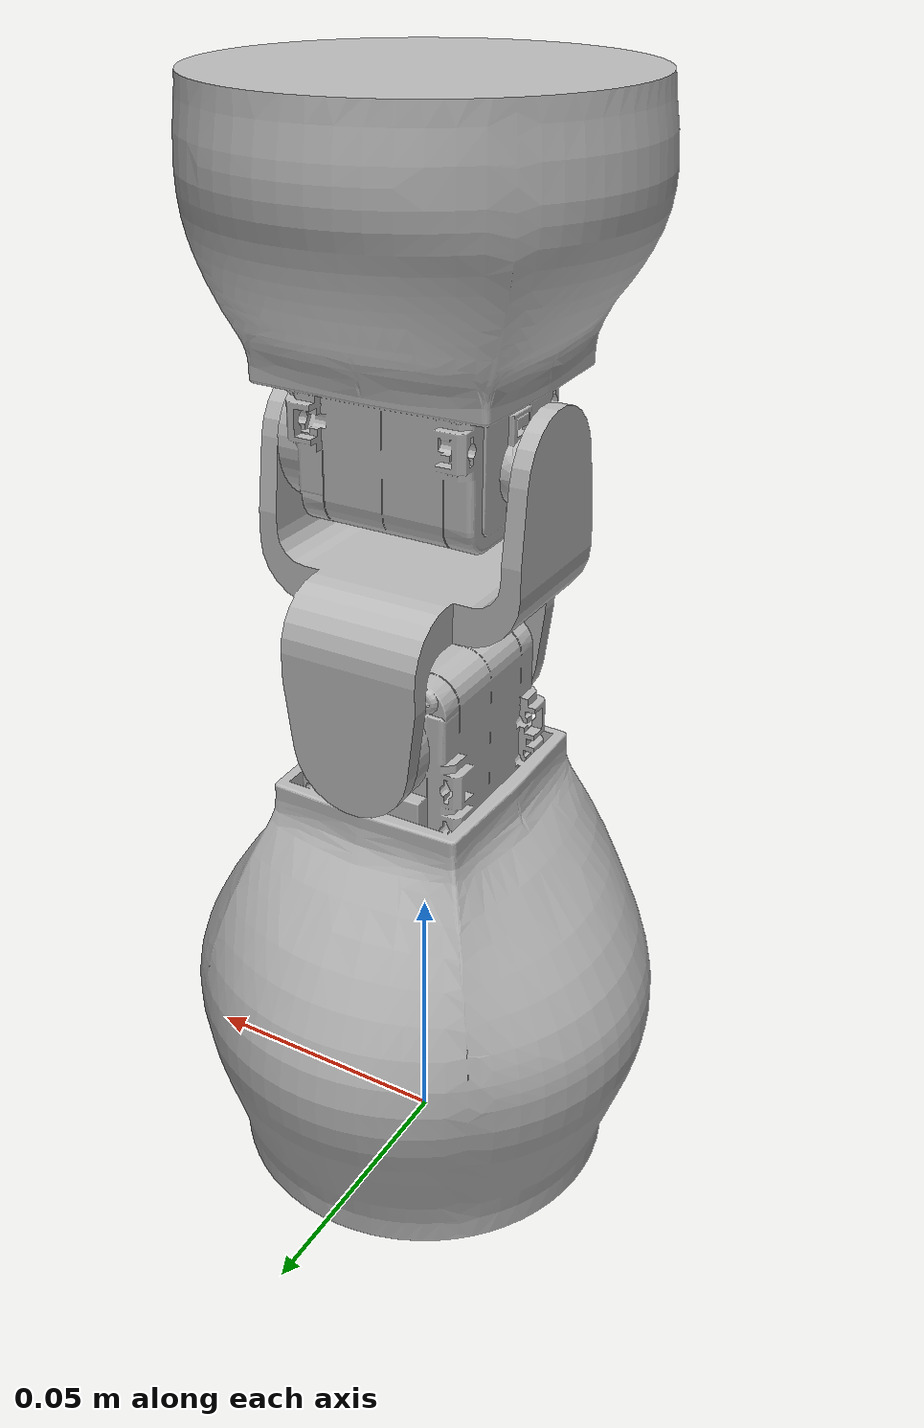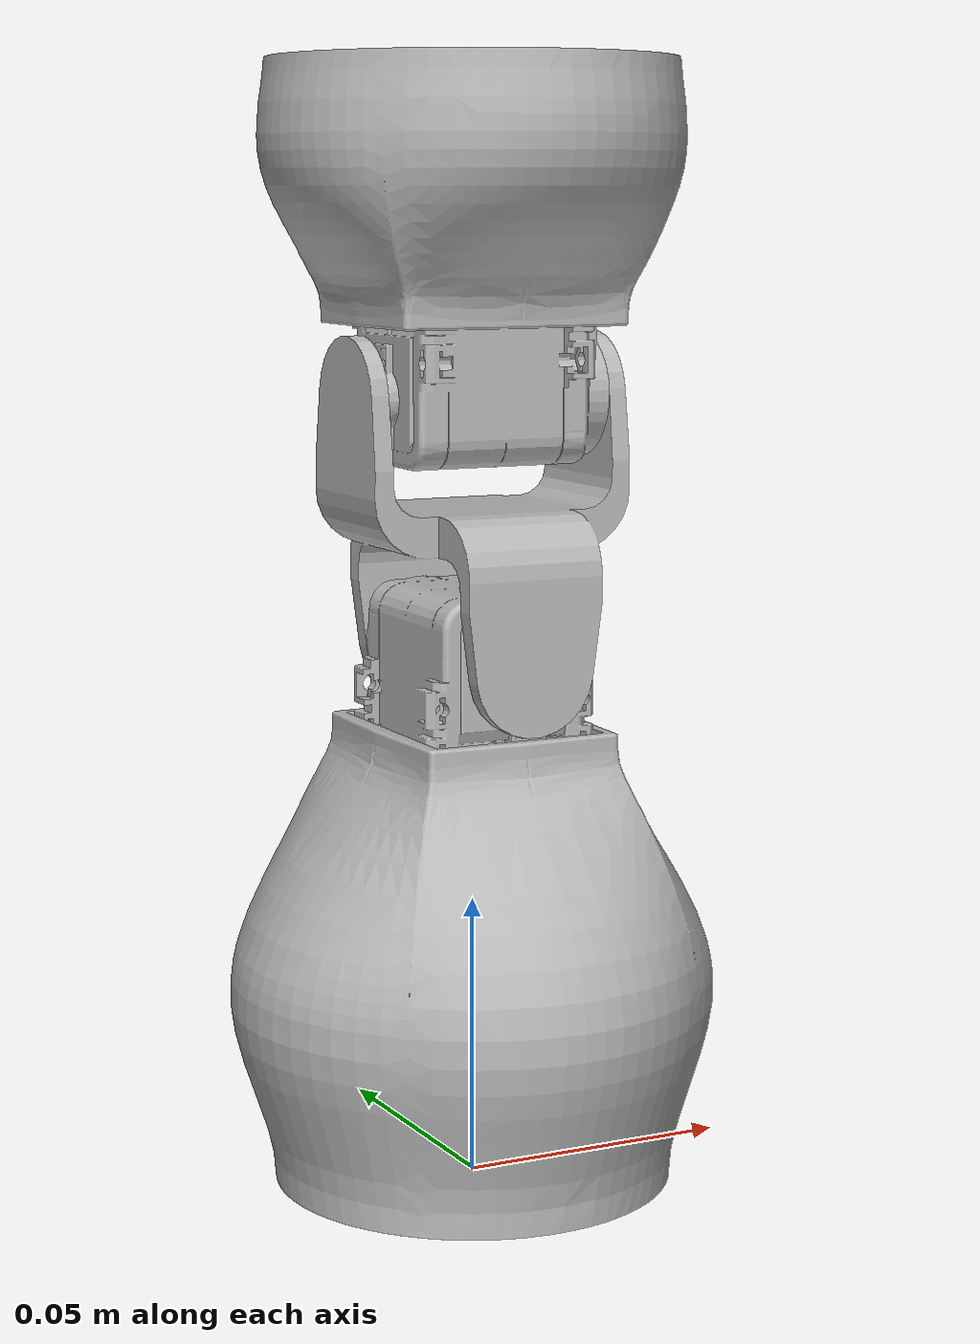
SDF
<?xml version="1.0" encoding="UTF-8"?>
<sdf version='1.6'>
  <model name='fable_robot'>
    <pose>0 0 0 0 0 0</pose>

    <link name='world'>
    </link>
    <link name='base_link'>
      <pose frame=''>0 0 0 0 -0 0</pose>
      <inertial>
        <pose frame=''>0 0 0 0 -0 0</pose>
        <mass>1000</mass>
        <inertia>
          <ixx>0.000196919</ixx>
          <ixy>0</ixy>
          <ixz>0</ixz>
          <iyy>0.000196919</iyy>
          <iyz>0</iyz>
          <izz>0.000245</izz>
        </inertia>
      </inertial>
      <collision name='base_link_collision'>
        <pose frame=''>0 0 0 0 -0 0</pose>
        <geometry>
          <mesh>
            <scale>1 1 1</scale>
            <uri>model://fable_model/meshes/base.dae</uri>
          </mesh>
        </geometry>
        <surface>
          <contact>
            <ode/>
          </contact>
          <friction>
            <ode/>
          </friction>
        </surface>
      </collision>
      <visual name='base_link_visual'>
        <pose frame=''>0 0 0 0 -0 0</pose>
        <geometry>
          <mesh>
            <scale>1 1 1</scale>
            <uri>model://fable_model/meshes/base.dae</uri>
          </mesh>
        </geometry>
        <material>
          <script>
            <uri>__default__</uri>
            <name>__default__</name>
          </script>
        </material>
      </visual>
      <gravity>1</gravity>
      <velocity_decay/>
    </link>

    <joint name='world_joint' type='fixed'>
      <child>base_link</child>
      <parent>world</parent>
      <axis>
        <xyz>-0 0 0</xyz>
        <use_parent_model_frame>1</use_parent_model_frame>
      </axis>
    </joint>

    <link name='neck'>
      <pose frame=''>0 0 0.0945 1.57079 -1.57079 3.14159</pose>
      <inertial>
        <pose frame=''>0 0 0 0 -0 0</pose>
        <mass>0.01</mass>
        <inertia>
          <ixx>6.88121e-06</ixx>
          <ixy>-7.58338e-10</ixy>
          <ixz>-7.71885e-11</ixz>
          <iyy>7.67769e-06</iyy>
          <iyz>7.59082e-10</iyz>
          <izz>6.8812e-06</izz>
        </inertia>
      </inertial>
      <collision name='neck_collision'>
        <pose frame=''>-0.0112 0 0 -1.57 -1.57 0</pose>
        <geometry>
          <mesh>
            <scale>1 1 1</scale>
            <uri>model://fable_model/meshes/middle.dae</uri>
          </mesh>
        </geometry>
        <surface>
          <contact>
            <ode/>
          </contact>
          <friction>
            <ode/>
          </friction>
        </surface>
      </collision>
      <visual name='neck_visual'>
        <pose frame=''>-0.0112 0 0 -1.57 -1.57 0</pose>
        <geometry>
          <mesh>
            <scale>1 1 1</scale>
            <uri>model://fable_model/meshes/middle.dae</uri>
          </mesh>
        </geometry>
        <material>
          <script>
            <uri>__default__</uri>
            <name>__default__</name>
          </script>
        </material>
      </visual>
      <gravity>1</gravity>
      <velocity_decay/>
    </link>
    <joint name='joint_1' type='revolute'>
      <child>neck</child>
      <parent>base_link</parent>
      <axis>
        <xyz>-0 1 -0</xyz>
        <limit>
          <lower>-1.5708</lower>
          <upper>1.5708</upper>
          <effort>1.56</effort>
          <velocity>1.56</velocity>
        </limit>
        <dynamics>
          <damping>0.15</damping>
          <friction>0.1</friction>
          <spring_reference>0</spring_reference>
          <spring_stiffness>0</spring_stiffness>
        </dynamics>
        <use_parent_model_frame>1</use_parent_model_frame>
      </axis>
    </joint>
    <link name='top'>
      <pose frame=''>0 0 0.1402 3e-06 -1.57079 3.14159</pose>
      <inertial>
        <pose frame=''>0 0 0 0 -0 0</pose>
        <mass>0.1</mass>
        <inertia>
          <ixx>0.0001525</ixx>
          <ixy>0</ixy>
          <ixz>0</ixz>
          <iyy>0.0001525</iyy>
          <iyz>0</iyz>
          <izz>0.000245</izz>
        </inertia>
      </inertial>
      <collision name='top_collision'>
        <pose frame=''>0.0566 0 0 -1.57 0 1.57</pose>
        <geometry>
          <mesh>
            <scale>1 1 1</scale>
            <uri>model://fable_model/meshes/top.dae</uri>
          </mesh>
        </geometry>
        <surface>
          <contact>
            <ode/>
          </contact>
          <friction>
            <ode/>
          </friction>
        </surface>
      </collision>
      <collision name='top_fixed_joint_lump__ee_link_collision_1'>
        <pose frame=''>0.06 0 0 3.14159 1.57079 3.14159</pose>
        <geometry>
          <box>
            <size>0.01 0.01 0.01</size>
          </box>
        </geometry>
      </collision>
      <visual name='top_visual'>
        <pose frame=''>0.0566 0 0 -1.57 0 1.57</pose>
        <geometry>
          <mesh>
            <scale>1 1 1</scale>
            <uri>model://fable_model/meshes/top.dae</uri>
          </mesh>
        </geometry>
        <material>
          <script>
            <uri>__default__</uri>
            <name>__default__</name>
          </script>
        </material>
      </visual>
      <gravity>1</gravity>
      <velocity_decay/>
    </link>
    <joint name='joint_2' type='revolute'>
      <child>top</child>
      <parent>neck</parent>
      <axis>
        <xyz>1 0 -0</xyz>
        <limit>
          <lower>-1.5708</lower>
          <upper>1.5708</upper>
          <effort>1.56</effort>
          <velocity>1.56</velocity>
        </limit>
        <dynamics>
          <damping>0.15</damping>
          <friction>0.1</friction>
          <spring_reference>0</spring_reference>
          <spring_stiffness>0</spring_stiffness>
        </dynamics>
        <use_parent_model_frame>1</use_parent_model_frame>
      </axis>
    </joint>

    <plugin name='generic_controller' filename='libgeneric_controller_plugin.so'>
      <robotNamespace>/fable_robot</robotNamespace>
      <controller joint_name='joint_1'>
        <type>position</type>
        <pid>100.0 10.0 10.0</pid>
      </controller>

      <controller joint_name='joint_2'>
        <type>position</type>
        <pid>100.0 10.0 10.0</pid>
      </controller>

    </plugin>
  </model>
</sdf>
